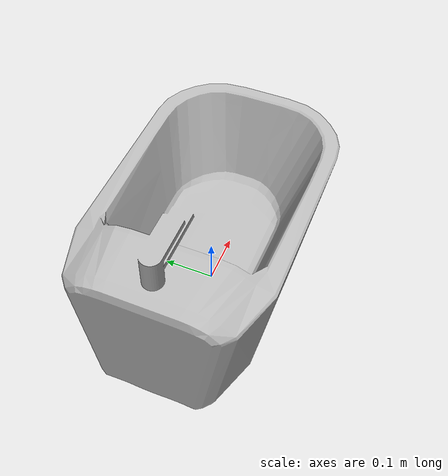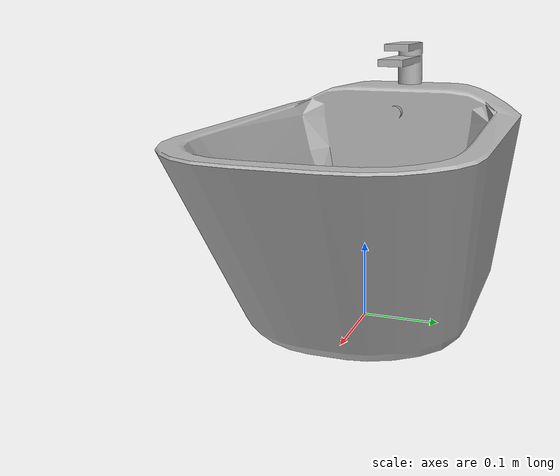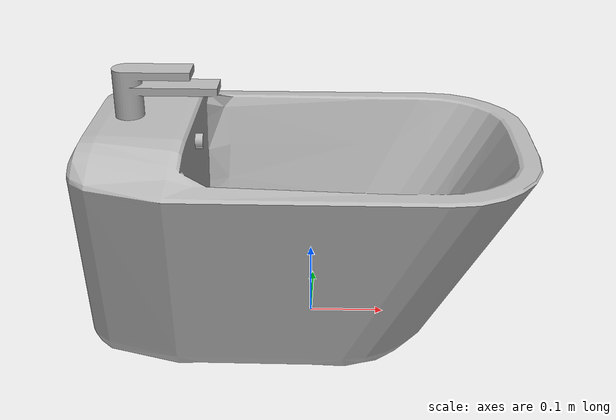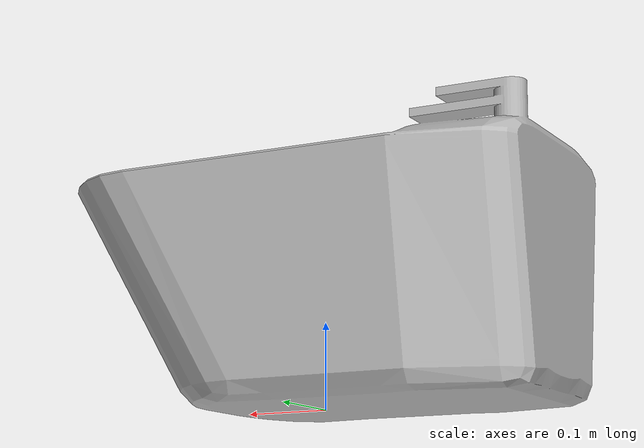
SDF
<?xml version='1.0'?>
<sdf version='1.4'>
  <model name='453'>
    <pose>0 0 0 0 0 0</pose>
    <static>true</static>
    <link name='link'>
      <collision name='collision'>
        <pose>0 0 0 0 0 0</pose>
        <geometry>
          <box>
            <size>0.57 0.36 2</size>
          </box>
        </geometry>
      </collision>
      <visual name='visual'>
        <pose>0 0 0 0 0 0</pose>
        <geometry>
          <mesh><uri>model://453/453.dae</uri></mesh>
        </geometry>
      </visual>
    </link>
  </model>
</sdf>
